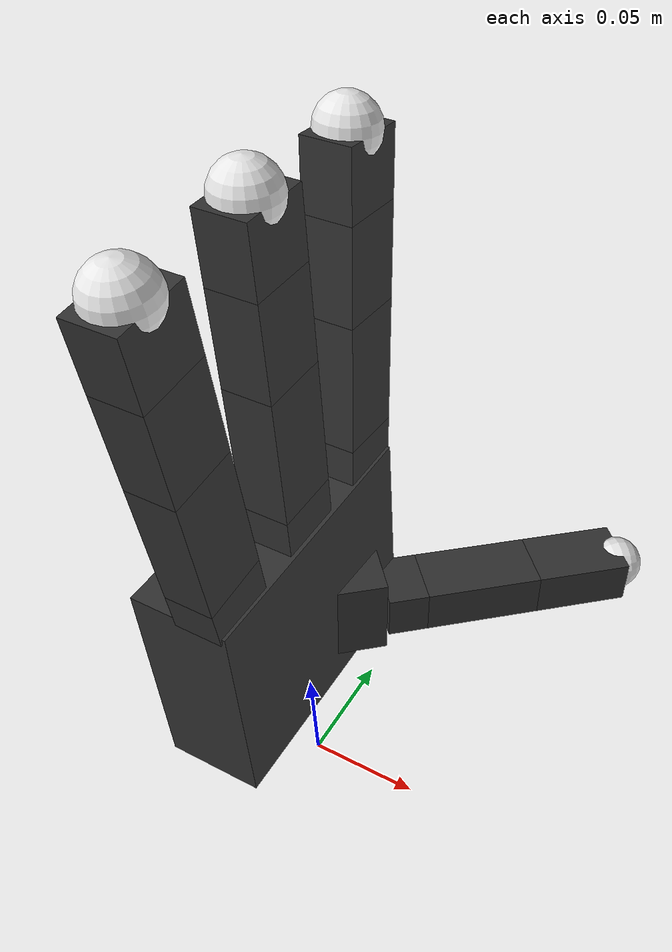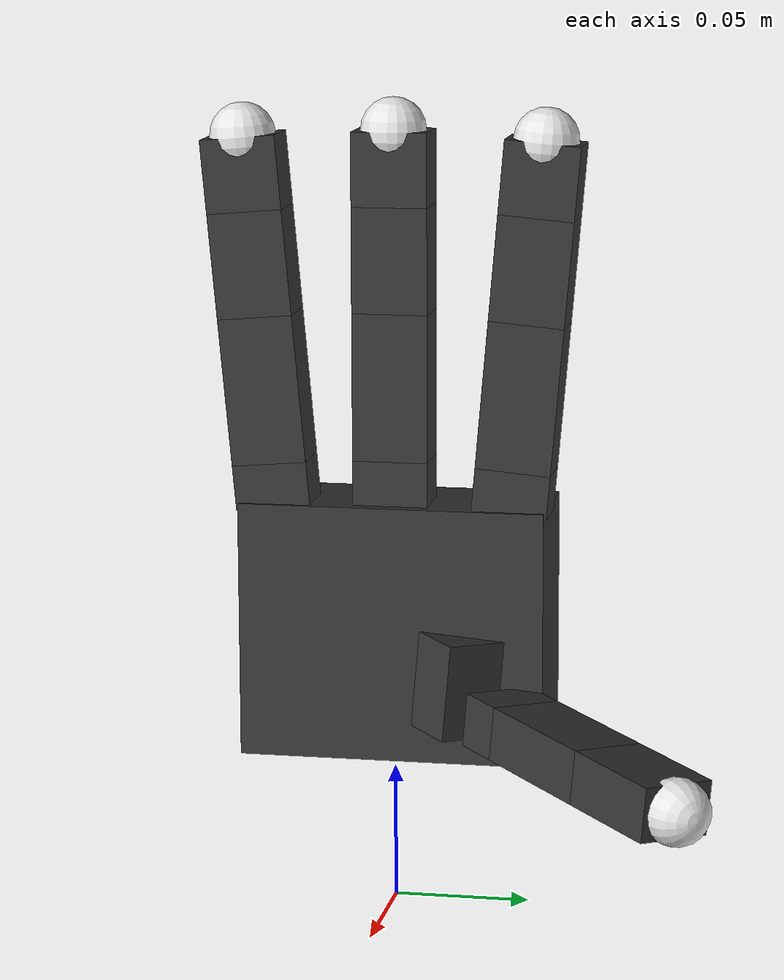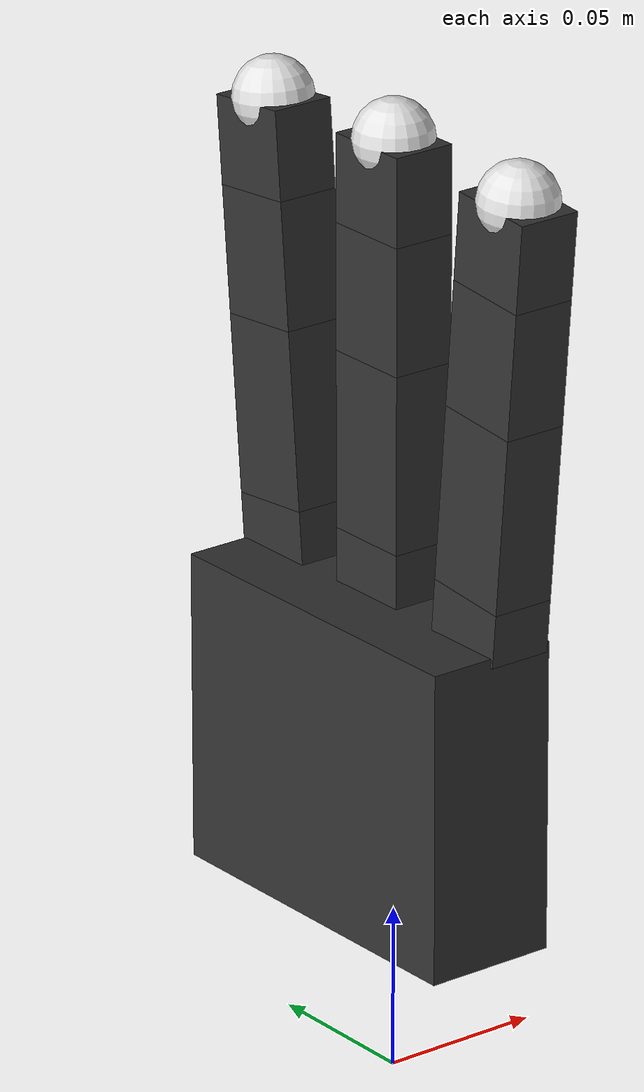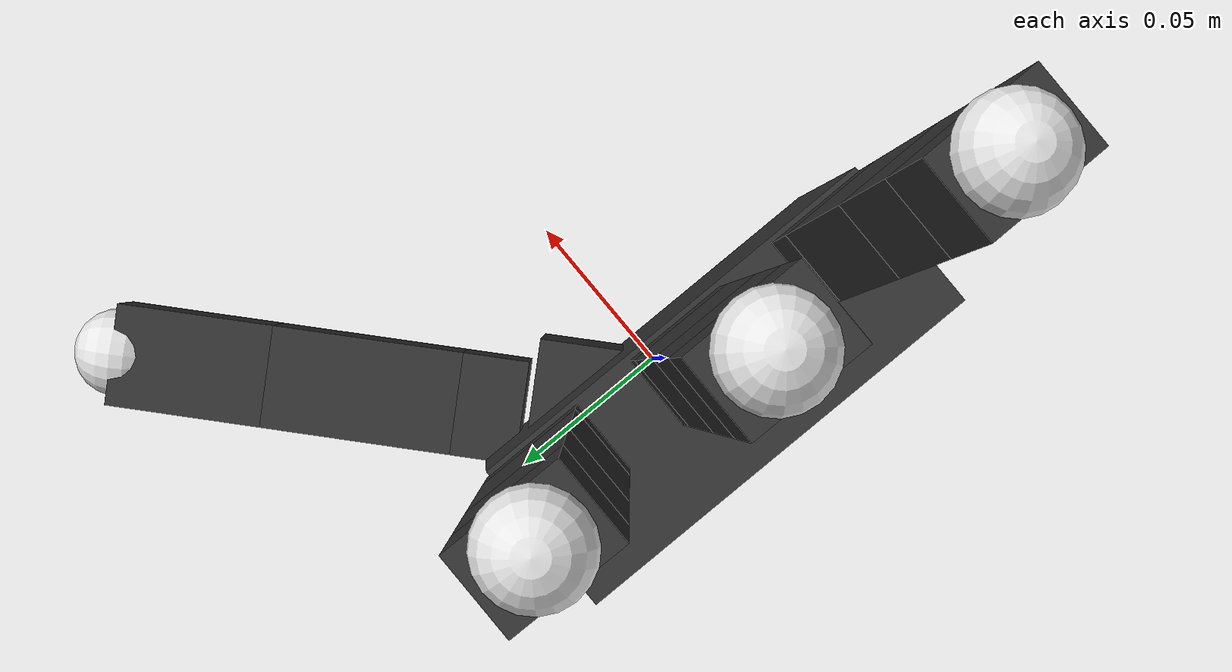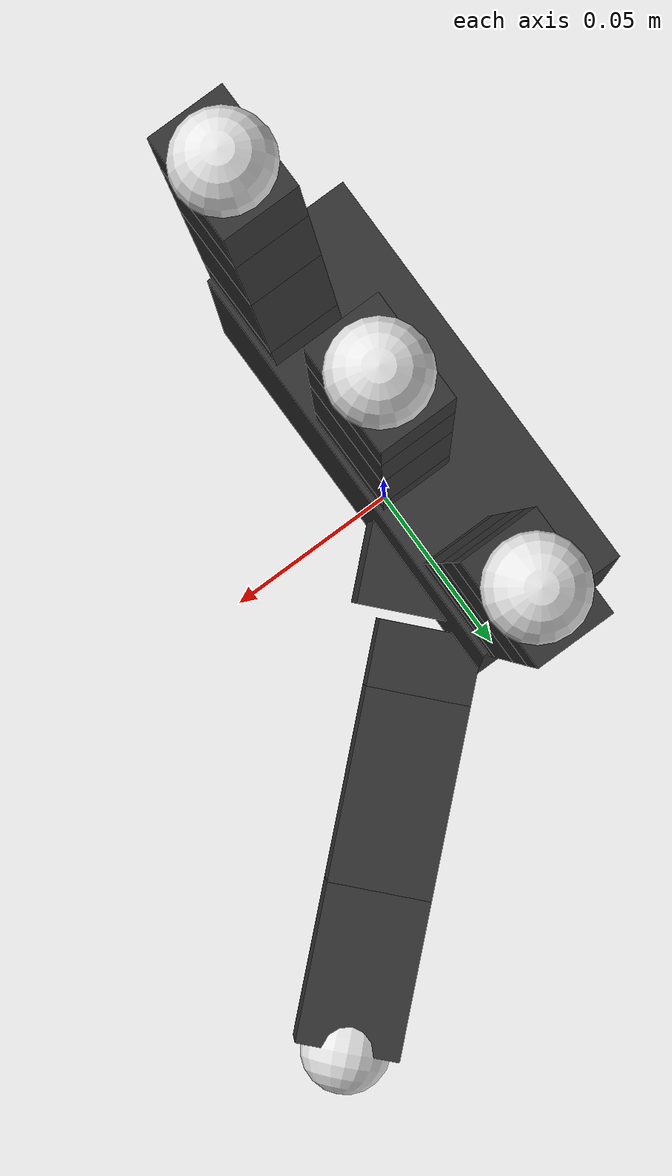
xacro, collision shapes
<?xml version="1.0"?>
<robot name="ahand" xmlns:xacro="http://ros.org/wiki/xacro">

    <xacro:arg name="hand_type" default="right"/>
    <xacro:property name="hand_type" default="$(arg hand_type)" />
    <xacro:include filename="$(find ahand_description)/urdf/ahand_$(arg hand_type).xacro"/>

    <link name="world"/>

    <xacro:ahand_robot name="ahand" parent_link="world" xyz="0.0 0 0.15" rpy="0 0 0"/>

</robot>

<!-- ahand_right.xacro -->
<robot xmlns:xacro="http://www.ros.org/wiki/xacro" name="right">

    <xacro:property name="DEG2RAD" value="0.01745329251"/>

    <!-- ======================== BASE PARAMS ========================= -->
    <xacro:property name="palm_link_z" value="0.095"/>

    <!-- ======================== FINGER PARAMS ======================== -->
    <xacro:property name="links_x" value="0.0196"/>
    <xacro:property name="links_y" value="0.0275"/>
    <xacro:property name="link0_z" value="0.0164"/>
    <xacro:property name="link1_z" value="0.0540"/>
    <xacro:property name="link2_z" value="0.0384"/>

    <!-- full height from joint to tip. when used,
         the radius of the finger tip sphere will be subtracted
         and one fixed link will be added for the tip. -->
    <xacro:property name="link3_z" value="0.0387"/>
    <xacro:property name="fingerTip_r" value="0.0120"/>
    <xacro:property name="offset_origin_x_const" value="0"/>
    <xacro:property name="offset_origin_y_const" value="0.0435"/>
    <xacro:property name="offset_origin_z_const" value="-0.001542"/>
    <xacro:property name="offset_origin_z_mid_const" value="0.0007"/>

    <!-- ========================= THUMB PARAMS ========================= -->
    <xacro:property name="link0_t_x" value="0.0358"/>
    <xacro:property name="link0_t_y" value="0.0340"/>
    <xacro:property name="link0_t_z" value="0.0455"/>
    <xacro:property name="link1_t_z" value="0.0177"/>
    <xacro:property name="link2_t_z" value="0.0514"/>
    <xacro:property name="link3_t_z" value="0.0543"/>

    <!-- ========================= LIMITS ========================= -->
    <xacro:property name="joint_safety_margin" value="0.1"/>
    <xacro:property name="limit_0_up" value="0.57"/>
    <xacro:property name="limit_0_low" value="-0.57"/>
    <xacro:property name="limit_1_up" value="1.71"/>
    <xacro:property name="limit_1_low" value="-0.296"/>
    <xacro:property name="limit_2_up" value="1.809"/>
    <xacro:property name="limit_2_low" value="-0.274"/>
    <xacro:property name="limit_3_up" value="1.718"/>
    <xacro:property name="limit_3_low" value=" -0.327"/>
    <xacro:property name="limit_0_t_up" value="1.496"/>
    <xacro:property name="limit_0_t_low" value="0.363"/>
    <xacro:property name="limit_1_t_up" value="1.263"/>
    <xacro:property name="limit_1_t_low" value="-0.205"/>
    <xacro:property name="limit_2_t_up" value="1.744"/>
    <xacro:property name="limit_2_t_low" value="-0.289"/>
    <xacro:property name="limit_3_t_up" value="1.819"/>
    <xacro:property name="limit_3_t_low" value="-0.262"/>

    <xacro:include filename="$(find ahand_description)/urdf/common.xacro"/>
    <xacro:property name="b" value="0.2"/>
    <xacro:property name="c" value="0.0"/>

    <!-- Include transmissions -->
    <xacro:include filename="$(find ahand_description)/urdf/ahand_transmission.xacro"/>

    <!-- Include Gazebo -->
    <xacro:include filename="$(find ahand_description)/urdf/ahand_gazebo.xacro"/>

    <!-- Base link -->
    <xacro:macro name="ahand_robot" params="name parent_link xyz rpy">

    <joint name="${name}_base_joint" type="fixed">
        <parent link="${parent_link}"/>
        <child link="${name}_palm_link"/>
        <origin xyz="${xyz}" rpy="${rpy}"/>
    </joint>

    <!-- PALM -->
    <link name="${name}_palm_link">
        <visual>
            <geometry>
                <mesh filename="package://ahand_description/meshes/base_link.STL"/>
            </geometry>
            <origin rpy="0 0 0" xyz="0 0 0 "/>
            <material name="black">
                <color rgba="0.2 0.2 0.2 1"/>
            </material>
        </visual>

        <collision>
            <origin rpy="0 0 0" xyz="-0.009300 0 -${palm_link_z/2}"/>
            <geometry>
                <box size="0.0408 0.1130 ${palm_link_z}"/>
            </geometry>
        </collision>
        <inertial>
          <origin xyz="0 0 ${palm_link_z/2}" rpy="0 0 0"/>
          <mass value="0.4154"/>
          <inertia
              ixx="1e-4" ixy="0.0" ixz="0.0"
              iyy="1e-4" iyz="0.0"
              izz="1e-4"/>
        </inertial>
    </link>

    <!-- FINGERS -->
    <!-- RIGHT HAND due to which finger is number 0 -->
    <!-- for LEFT HAND switch the sign of the **offset_origin_y** and **finger_angle_r** parameters-->
    <xacro:finger
            name="${name}"
            finger_num="0"
            offset_origin_x="${offset_origin_x_const}"
            offset_origin_y="${offset_origin_y_const}"
            offset_origin_z="${offset_origin_z_const}"
            finger_angle_r="-${5.0*DEG2RAD}"
            />
    <xacro:finger
            name="${name}"
            finger_num="1"
            offset_origin_x="${offset_origin_x_const}"
            offset_origin_y="0"
            offset_origin_z="${offset_origin_z_mid_const}"
            finger_angle_r="0.0"
            />
    <xacro:finger
            name="${name}"
            finger_num="2"
            offset_origin_x="${offset_origin_x_const}"
            offset_origin_y="-${offset_origin_y_const}"
            offset_origin_z="${offset_origin_z_const}"
            finger_angle_r="${5.0*DEG2RAD}"
            />
    <!-- THUMB -->
    <xacro:thumb_right
            name="${name}"
            finger_num="3"
            offset_origin_x="-0.0182"
            offset_origin_y="0.019333"
            offset_origin_z="-0.045987"
            finger_angle_r="0"
            finger_angle_p="-${95*DEG2RAD}"
            finger_angle_y="-${90*DEG2RAD}"
            />

    <xacro:ahand_gazebo name="${name}"/>
    <xacro:ahand_transmission name="${name}"/>

    </xacro:macro>

    <!-- THUMB MACRO -->
    <xacro:macro name="thumb_right"
                 params="name finger_num offset_origin_x offset_origin_y offset_origin_z finger_angle_r finger_angle_p finger_angle_y">

        <!-- [LINK 12] -->
        <link name="${name}_link_${finger_num*4+0}">
            <visual>
                <geometry>
                    <mesh filename="package://ahand_description/meshes/link_12.0_right.STL"/>
                </geometry>
                <material name="black">
                    <color rgba=".2 .2 .2 1"/>
                </material>
                <origin rpy="${0*DEG2RAD} 0 0" xyz="0 0 0"/>
            </visual>

            <collision>
                <geometry>
                    <box size="${link0_t_x} ${link0_t_y} ${link0_t_z}"/>
                </geometry>
                <origin rpy="0 0 0" xyz="${-0.0358/2+0.0} ${.018/2} ${.029/2}"/>
            </collision>

            <inertial>
              <mass value="0.0176" />
              <origin xyz="0 0 0" rpy="0 0 0"/>
              <inertia ixx="1.89273333333e-5" ixy="7.16716e-06" ixz="5.35568e-06"
                       iyy="1.43008213333e-05" iyz="6.8068e-06"
                       izz="1.89273333333e-05" />
            </inertial>
        </link>

        <joint name="${name}_joint_${finger_num*4+0}" type="revolute">
            <axis xyz="-1 0 0"/>
            <limit effort="15" velocity="7"
                   lower="${limit_0_t_low-joint_safety_margin}"
                   upper="${limit_0_t_up-joint_safety_margin}"/>
            <parent link="${name}_palm_link"/>
            <child link="${name}_link_${finger_num*4+0}"/>
            <origin rpy="${finger_angle_r} ${finger_angle_p} ${finger_angle_y}"
                    xyz="${offset_origin_x} ${offset_origin_y} ${offset_origin_z}"/>
            <dynamics damping="3" friction="10"/>
        </joint>

        <!-- [LINK 13] -->
        <link name="${name}_link_${finger_num*4+1}">
            <visual>
                <geometry>
                    <mesh filename="package://ahand_description/meshes/link_13.0.STL"/>
                </geometry>
                <material name="black">
                    <color rgba=".2 .2 .2 1"/>
                </material>
            </visual>

            <collision>
                <geometry>
                    <box size="${links_x} ${links_y} ${link1_t_z}"/>
                </geometry>
                <origin rpy="0 0 0" xyz="0 0 ${link1_t_z/2}"/>
            </collision>

            <inertial>
              <mass value="0.0119" />
              <origin xyz="0 0 0" rpy="0 0 0"/>
              <inertia ixx="4.24250866667e-06" ixy="1.032087e-06" ixz="1.603525e-06"
                       iyy="4.52362633333e-06" iyz="1.44808125e-06"
                       izz="4.24250866667e-06" />
            </inertial>
        </link>

        <joint name="${name}_joint_${finger_num*4+1}" type="revolute">
            <axis xyz="0 0 1"/>
            <limit effort="15" velocity="7"
                   lower="${limit_1_t_low+joint_safety_margin}"
                   upper="${limit_1_t_up-joint_safety_margin}"/>
            <parent link="${name}_link_${finger_num*4+0}"/>
            <child link="${name}_link_${finger_num*4+1}"/>
            <origin xyz="-0.027 0.005 0.0399"/>
            <dynamics damping="3" friction="5"/>
        </joint>

        <!-- [LINK 14] -->
        <link name="${name}_link_${finger_num*4+2}">
            <visual>
                <geometry>
                    <mesh filename="package://ahand_description/meshes/link_14.0.STL"/>
                </geometry>
                <material name="black">
                </material>
            </visual>

            <collision>
                <geometry>
                    <box size="${links_x} ${links_y} ${link2_t_z}"/>
                </geometry>
                <origin rpy="0 0 0" xyz="0 0 ${link2_t_z/2}"/>
            </collision>

            <inertial>
              <mass value="0.038" />
              <origin xyz="0 0 0" rpy="0 0 0"/>
              <inertia ixx="4.30439933333e-05" ixy="9.57068e-06" ixz="5.1205e-06" iyy="1.44451933333e-05"
                       iyz="1.342825e-05" izz="4.30439933333e-05" />
            </inertial>
        </link>

        <joint name="${name}_joint_${finger_num*4+2}" type="revolute">
            <axis xyz="0 1 0"/>
            <limit effort="15" velocity="7"
                   lower="${limit_2_t_low+joint_safety_margin}"
                   upper="${limit_2_t_up-joint_safety_margin}"/>
            <parent link="${name}_link_${finger_num*4+1}"/>
            <child link="${name}_link_${finger_num*4+2}"/>
            <origin xyz="0 0 ${link1_t_z}"/>
            <dynamics damping="3" friction="10"/>
        </joint>

        <!-- [LINK 15] -->
        <link name="${name}_link_${finger_num*4+3}">
            <visual>
                <geometry>
                    <mesh filename="package://ahand_description/meshes/link_15.0.STL"/>
                </geometry>
                <material name="black">
                </material>
            </visual>

            <collision>
                <geometry>
                    <box size="${links_x} ${links_y} ${link3_t_z-fingerTip_r}"/>
                </geometry>
                <origin rpy="0 0 0" xyz="0 0 ${(link3_t_z-fingerTip_r)/2}"/>
            </collision>

            <inertial>
              <mass value="0.0388" />
              <origin xyz="0 0 0" rpy="0 0 0"/>
              <inertia ixx="3.29223173333e-05" ixy="8.042076e-06" ixz="5.2283e-06"
                       iyy="1.47493026667e-5" iyz="1.1283525e-5"
                       izz="3.29223173333e-05" />
            </inertial>
        </link>

        <joint name="${name}_joint_${finger_num*4+3}" type="revolute">
            <axis xyz="0 1 0"/>
            <limit effort="15" velocity="7"
                   lower="${limit_3_t_low+joint_safety_margin}"
                   upper="${limit_3_t_up-joint_safety_margin}"/>
            <parent link="${name}_link_${finger_num*4+2}"/>
            <child link="${name}_link_${finger_num*4+3}"/>
            <origin xyz="0 0 ${link2_t_z}"/>
            <dynamics damping="3" friction="12"/>
        </joint>

        <!-- [FINGER TIP] -->
        <link name="${name}_link_${finger_num*4+3}_tip">
            <visual>
                <geometry>
                    <mesh filename="package://ahand_description/meshes/link_15.0_tip.STL"/>
                </geometry>
                <material name="white">
                    <color rgba=".9 .9 .9 1"/>
                </material>
            </visual>

            <collision>
                <geometry>
                    <sphere radius="${fingerTip_r}"/>
                </geometry>
                <origin rpy="0 0 0" xyz="0 0 0"/>
            </collision>

            <inertial>
              <mass value="0.0168" />
              <origin xyz="0 0 0" rpy="0 0 0"/>
              <inertia ixx="9.68e-07" ixy="0" ixz="0"
                       iyy="9.68e-07" iyz="0"
                       izz="9.68e-07" />
            </inertial>
        </link>

        <joint name="joint_${finger_num*4+3}_tip" type="fixed">
            <parent link="${name}_link_${finger_num*4+3}"/>
            <child link="${name}_link_${finger_num*4+3}_tip"/>
            <origin rpy="0 0 0" xyz="0 0 ${link3_t_z-fingerTip_r}"/>
        </joint>
    </xacro:macro>
    <!-- END THUMB MACRO -->

    <!-- THREE FINGER MACRO -->
    <xacro:macro name="finger"
                 params="name finger_num offset_origin_x offset_origin_y offset_origin_z finger_angle_r">

        <!-- [LINK 0, 4, 8] -->
        <link name="${name}_link_${finger_num*4+0}">
            <visual>
                <geometry>
                    <mesh filename="package://ahand_description/meshes/link_0.0.STL"/>
                </geometry>
                <material name="black"/>
            </visual>

            <collision>
                <geometry>
                    <box size="${links_x} ${links_y} ${link0_z}"/>
                </geometry>
                <origin rpy="0 0 0" xyz="0 0 ${link0_z/2}"/>
            </collision>

            <inertial>
              <mass value="0.0119" />
              <origin xyz="0 0 0" rpy="0 0 0"/>
              <inertia ixx="1.01666658333e-06" ixy="0.0" ixz="0.0"
                       iyy="6.47677333333e-07" iyz="0.0"
                       izz="1.01666658333e-06" />
            </inertial>
        </link>

        <joint name="${name}_joint_${finger_num*4+0}" type="revolute">
            <axis xyz="0 0 1"/>
            <limit effort="15" velocity="7"
                   lower="${limit_0_low+joint_safety_margin}"
                   upper="${limit_0_up-joint_safety_margin}"/>
            <parent link="${name}_palm_link"/>
            <child link="${name}_link_${finger_num*4+0}"/>
            <origin rpy="${finger_angle_r} 0 0"
                    xyz="${offset_origin_x} ${offset_origin_y} ${offset_origin_z}"/>
            <dynamics damping="3" friction="10"/>
        </joint>

        <!-- [LINK 1, 5, 9] -->
        <link name="${name}_link_${finger_num*4+1}">
            <visual>
                <geometry>
                    <mesh filename="package://ahand_description/meshes/link_1.0.STL"/>
                </geometry>
                <material name="black"/>
            </visual>

            <collision>
                <geometry>
                    <box size="${links_x} ${links_y} ${link1_z}"/>
                </geometry>
                <origin rpy="0 0 0" xyz="0 0 ${link1_z/2}"/>
            </collision>
            <inertial>
              <mass value="0.065" />
              <origin xyz="0 0 0" rpy="0 0 0"/>
              <inertia ixx="7.95654166667e-05" ixy="1.7199e-05" ixz="8.75875e-06"
                       iyy="2.47088833333e-05" iyz="2.413125e-05"
                       izz="7.95654166667e-05" />
            </inertial>
        </link>

        <joint name="${name}_joint_${finger_num*4+1}" type="revolute">
            <limit effort="15" velocity="7"
                   lower="${limit_1_low+joint_safety_margin}"
                   upper="${limit_1_up-joint_safety_margin}"/>
            <axis xyz="0 1 0"/>
            <parent link="${name}_link_${finger_num*4+0}"/>
            <child link="${name}_link_${finger_num*4+1}"/>
            <origin xyz="0 0 ${link0_z}"/>
            <dynamics damping="3" friction="5"/>
        </joint>

        <!-- [LINK 2, 6, 10]-->
        <link name="${name}_link_${finger_num*4+2}">
            <visual>
                <geometry>
                    <mesh filename="package://ahand_description/meshes/link_2.0.STL"/>
                </geometry>
                <material name="black"/>
            </visual>

            <collision>
                <geometry>
                    <box size="${links_x} ${links_y} ${link2_z}"/>
                </geometry>
                <origin rpy="0 0 0" xyz="0 0 ${link2_z/2}"/>
            </collision>

            <inertial>
              <mass value="0.0355" />
              <origin xyz="0 0 0" rpy="0 0 0"/>
              <inertia ixx="2.63979183333e-05" ixy="6.67968e-06" ixz="4.783625e-06"
                       iyy="1.34948516667e-05" iyz="9.372e-06"
                       izz="2.63979183333e-05" />
            </inertial>
        </link>

        <joint name="${name}_joint_${finger_num*4+2}" type="revolute">
            <axis xyz="0 1 0"/>
            <limit effort="15" velocity="7"
                   lower="${limit_2_low+joint_safety_margin}"
                   upper="${limit_2_up-joint_safety_margin}"/>
            <parent link="${name}_link_${finger_num*4+1}"/>
            <child link="${name}_link_${finger_num*4+2}"/>
            <origin xyz="0 0 ${link1_z}"/>
            <dynamics damping="8" friction="10"/>
        </joint>

        <!-- [LINK 3, 7, 11] -->
        <link name="${name}_link_${finger_num*4+3}">
            <visual>
                <geometry>
                    <mesh filename="package://ahand_description/meshes/link_3.0.STL"/>
                </geometry>
                <material name="black"/>
            </visual>

            <collision>
                <geometry>
                    <box size="${links_x} ${links_y} ${link3_z-fingerTip_r}"/>
                </geometry>
                <origin rpy="0 0 0" xyz="0 0 ${(link3_z-fingerTip_r)/2}"/>
            </collision>

            <inertial>
              <mass value="0.0096" />
              <origin xyz="0 0 0" rpy="0 0 0"/>
              <inertia ixx="4.701248e-06" ixy="1.255968e-06" ixz="1.2936e-06"
                       iyy="3.649312e-06" iyz="1.7622e-06"
                       izz="4.701248e-06" />
            </inertial>
        </link>

        <joint name="${name}_joint_${finger_num*4+3}" type="revolute">
            <axis xyz="0 1 0"/>
            <limit effort="15" velocity="7"
                   lower="${limit_3_low+joint_safety_margin}"
                   upper="${limit_3_up-joint_safety_margin}"/>
            <parent link="${name}_link_${finger_num*4+2}"/>
            <child link="${name}_link_${finger_num*4+3}"/>
            <origin xyz="0 0 ${link2_z}"/>
            <dynamics damping="10" friction="12"/>
        </joint>

        <!-- [FINGER TIP] -->
        <link name="${name}_link_${finger_num*4+3}_tip">
            <visual>
                <geometry>
                    <mesh filename="package://ahand_description/meshes/link_3.0_tip.STL"/>
                </geometry>
                <material name="white">
                    <color rgba=".9 .9 .9 1"/>
                </material>
            </visual>

            <collision>
                <geometry>
                    <sphere radius="${fingerTip_r}"/>
                </geometry>
            </collision>

            <inertial>
              <mass value="0.0168" />
              <origin xyz="0 0 0" rpy="0 0 0"/>
              <inertia ixx="9.68e-07" ixy="0" ixz="0"
                       iyy="9.68e-07" iyz="0"
                       izz="9.68e-07" />
            </inertial>
        </link>

        <joint name="${name}_joint_${finger_num*4+3}_tip" type="fixed">
            <parent link="${name}_link_${finger_num*4+3}"/>
            <child link="${name}_link_${finger_num*4+3}_tip"/>
            <origin rpy="0 0 0" xyz="0 0 ${link3_z-fingerTip_r}"/>
        </joint>
    </xacro:macro>
    <!-- [[END]] THREE FINGER MACRO -->
</robot>
